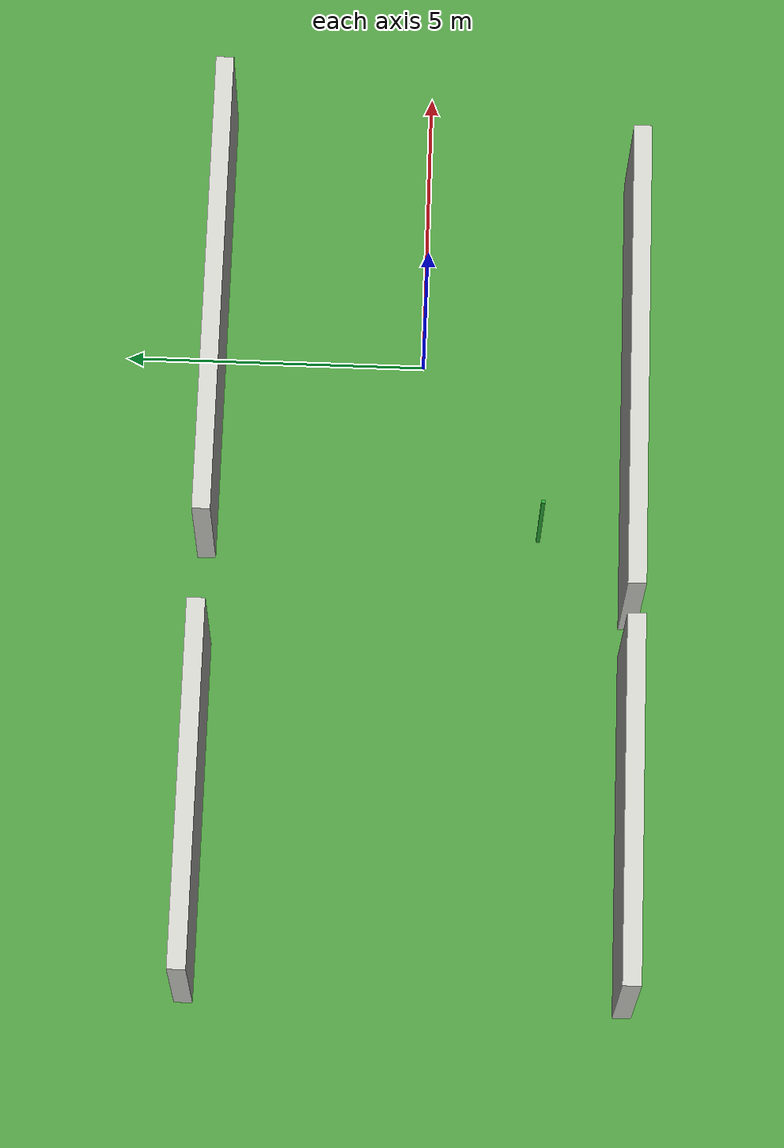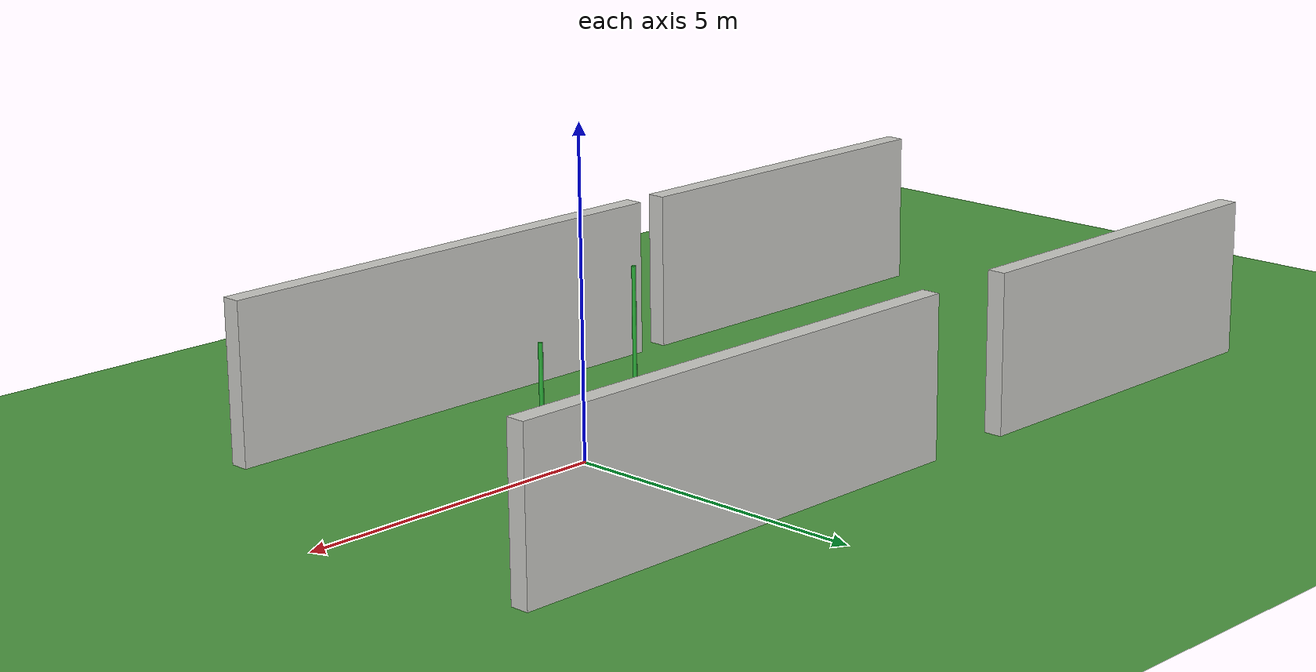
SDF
<sdf version="1.7">
 <world name="default">
  <gravity>0 0 -9.8</gravity>
  <magnetic_field>6e-06 2.3e-05 -4.2e-05</magnetic_field>
  <atmosphere type="adiabatic"/>
  <physics type="ode">
   <max_step_size>0.001</max_step_size>
   <real_time_factor>1</real_time_factor>
   <real_time_update_rate>1000</real_time_update_rate>
  </physics>
  <scene><ambient>0.4 0.4 0.4 1</ambient><background>0.7 0.7 0.7 1</background><shadows>1</shadows></scene>
  <spherical_coordinates>
   <surface_model>EARTH_WGS84</surface_model>
   <latitude_deg>0</latitude_deg>
   <longitude_deg>0</longitude_deg>
   <elevation>0</elevation>
   <heading_deg>0</heading_deg>
  </spherical_coordinates>
  <model name="ground_plane">
   <static>true</static>
   <link name="link">
    <collision name="collision">
     <geometry><plane><normal>0 0 1</normal><size>100 100</size></plane></geometry>
     <surface><friction><ode><mu>100</mu><mu2>50</mu2></ode></friction></surface>
    </collision>
    <visual name="visual">
     <geometry><plane><normal>0 0 1</normal><size>100 100</size></plane></geometry>
     <material>
      <script><uri>file://media/materials/scripts/gazebo.material</uri><name>Gazebo/Grass</name></script>
     </material>
    </visual>
   </link>
  </model>
  <model name="hallway">
   <link name="Wall_2">
    <pose>0 3.5 0 0 0 0</pose>
    <visual name="Wall_2_Visual_0">
     <pose>-8.0 0 1.25 0 0 0</pose>
     <geometry><box><size>6.0 0.30 2.5</size></box></geometry>
     <material>
      <script><uri>file://media/materials/scripts/gazebo.material</uri><name>Gazebo/CeilingTiled</name></script>
      <ambient>1 0.764706 0.305882 1</ambient>
     </material>
    </visual>
    <collision name="Wall_2_Collision_0"><geometry><box><size>6.0 0.30 2.5</size></box></geometry></collision>
    <visual name="Wall_2_Visual_1">
     <pose>0.5 0 1.25 0 0 0</pose>
     <geometry><box><size>8.0 0.30 2.5</size></box></geometry>
     <material>
      <script><uri>file://media/materials/scripts/gazebo.material</uri><name>Gazebo/CeilingTiled</name></script>
      <ambient>1 0.764706 0.305882 1</ambient>
     </material>
    </visual>
    <collision name="Wall_2_Collision_1"><geometry><box><size>8.0 0.30 2.5</size></box></geometry></collision>
   </link>
   <link name="Wall_7">
    <pose>0 -3.5 0 0 0 0</pose>
    <visual name="Wall_7_Visual_0">
     <pose>-8.0 0 1.25 0 0 0</pose>
     <geometry><box><size>6.0 0.30 2.5</size></box></geometry>
     <material>
      <script><uri>file://media/materials/scripts/gazebo.material</uri><name>Gazebo/CeilingTiled</name></script>
      <ambient>1 0.764706 0.305882 1</ambient>
     </material>
    </visual>
    <collision name="Wall_7_Collision_0"><geometry><box><size>6.0 0.30 2.5</size></box></geometry></collision>
    <visual name="Wall_7_Visual_1">
     <pose>-0.5 0 1.25 0 0 0</pose>
     <geometry><box><size>8.0 0.30 2.5</size></box></geometry>
     <material>
      <script><uri>file://media/materials/scripts/gazebo.material</uri><name>Gazebo/CeilingTiled</name></script>
      <ambient>1 0.764706 0.305882 1</ambient>
     </material>
    </visual>
    <collision name="Wall_7_Collision_1"><geometry><box><size>8.0 0.30 2.5</size></box></geometry></collision>
   </link>
   <static>1</static>
  </model>
  <model name="pole">
   <link name="link_0">
    <inertial>
     <mass>0.00923403</mass>
     <inertia>
      <ixx>0.00305283</ixx>
      <ixy>0</ixy>
      <ixz>0</ixz>
      <iyy>0.00305283</iyy>
      <iyz>0</iyz>
      <izz>5.33269e-06</izz>
     </inertia>
    </inertial>
    <visual name="visual">
     <geometry><cylinder><radius>0.0339854</radius><length>1.99093</length></cylinder></geometry>
     <material>
      <lighting>1</lighting>
      <script><uri>file://media/materials/scripts/gazebo.material</uri><name>Gazebo/Green</name></script>
      <shader type="pixel"/>
     </material>
    </visual>
    <collision name="collision">
     <geometry><cylinder><radius>0.033985</radius><length>1.99093</length></cylinder></geometry>
     <surface>
      <friction>
       <ode><mu>1</mu><mu2>1</mu2><fdir1>0 0 0</fdir1><slip1>0</slip1><slip2>0</slip2></ode>
       <torsional>
        <coefficient>1</coefficient>
        <patch_radius>0</patch_radius>
        <surface_radius>0</surface_radius>
        <use_patch_radius>1</use_patch_radius>
        <ode><slip>0</slip></ode>
       </torsional>
      </friction>
      <bounce><restitution_coefficient>0</restitution_coefficient><threshold>1e+06</threshold></bounce>
      <contact>
       <collide_without_contact>0</collide_without_contact>
       <collide_without_contact_bitmask>1</collide_without_contact_bitmask>
       <collide_bitmask>1</collide_bitmask>
       <ode>
        <soft_cfm>0</soft_cfm>
        <soft_erp>0.2</soft_erp>
        <kp>1e+13</kp>
        <kd>1</kd>
        <max_vel>0.01</max_vel>
        <min_depth>0</min_depth>
       </ode>
       <bullet>
        <split_impulse>1</split_impulse>
        <split_impulse_penetration_threshold>-0.01</split_impulse_penetration_threshold>
        <soft_cfm>0</soft_cfm>
        <soft_erp>0.2</soft_erp>
        <kp>1e+13</kp>
        <kd>1</kd>
       </bullet>
      </contact>
     </surface>
    </collision>
   </link>
   <static>0</static>
   <pose>0.827464 0.00589 0.987109 0 -0 0</pose>
  </model>
  <model name="pole">
   <link name="link_0">
    <inertial>
     <mass>0.00923403</mass>
     <inertia>
      <ixx>0.00305283</ixx>
      <ixy>0</ixy>
      <ixz>0</ixz>
      <iyy>0.00305283</iyy>
      <iyz>0</iyz>
      <izz>5.33269e-06</izz>
     </inertia>
    </inertial>
    <visual name="visual">
     <geometry><cylinder><radius>0.0339854</radius><length>1.99093</length></cylinder></geometry>
     <material>
      <lighting>1</lighting>
      <script><uri>file://media/materials/scripts/gazebo.material</uri><name>Gazebo/Green</name></script>
      <shader type="pixel"/>
     </material>
    </visual>
    <collision name="collision">
     <geometry><cylinder><radius>0.033985</radius><length>1.99093</length></cylinder></geometry>
     <surface>
      <friction>
       <ode><mu>1</mu><mu2>1</mu2><fdir1>0 0 0</fdir1><slip1>0</slip1><slip2>0</slip2></ode>
       <torsional>
        <coefficient>1</coefficient>
        <patch_radius>0</patch_radius>
        <surface_radius>0</surface_radius>
        <use_patch_radius>1</use_patch_radius>
        <ode><slip>0</slip></ode>
       </torsional>
      </friction>
      <bounce><restitution_coefficient>0</restitution_coefficient><threshold>1e+06</threshold></bounce>
      <contact>
       <collide_without_contact>0</collide_without_contact>
       <collide_without_contact_bitmask>1</collide_without_contact_bitmask>
       <collide_bitmask>1</collide_bitmask>
       <ode>
        <soft_cfm>0</soft_cfm>
        <soft_erp>0.2</soft_erp>
        <kp>1e+13</kp>
        <kd>1</kd>
        <max_vel>0.01</max_vel>
        <min_depth>0</min_depth>
       </ode>
       <bullet>
        <split_impulse>1</split_impulse>
        <split_impulse_penetration_threshold>-0.01</split_impulse_penetration_threshold>
        <soft_cfm>0</soft_cfm>
        <soft_erp>0.2</soft_erp>
        <kp>1e+13</kp>
        <kd>1</kd>
       </bullet>
      </contact>
     </surface>
    </collision>
   </link>
   <static>0</static>
   <pose>-3 -2 0.987109 0 -0 0</pose>
  </model>
 </world>
</sdf>
